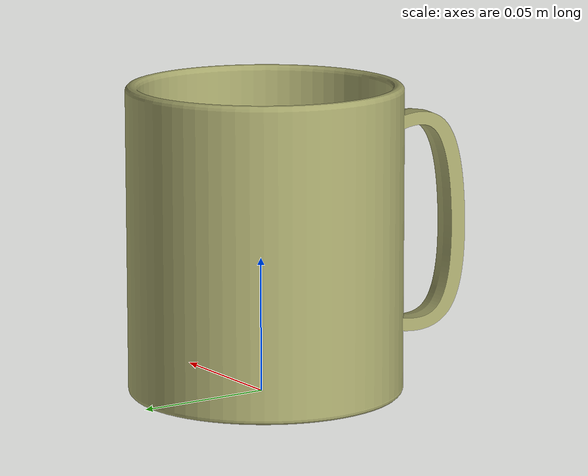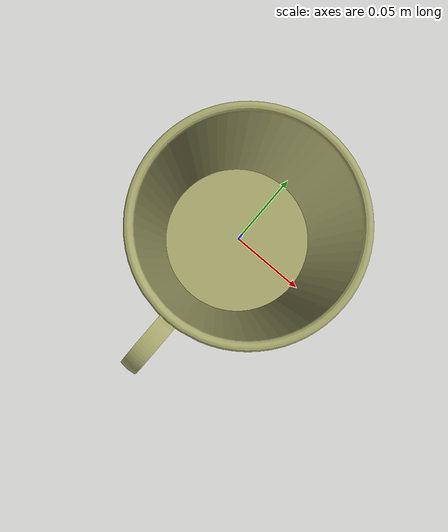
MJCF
<mujoco>
  <asset>
    <mesh name="cup_visual"           file="cup_visual.stl" scale="0.001 0.001 0.001"/>
    <mesh name="cup_handle_collision" file="cup_handle_collision.stl" scale="0.001 0.001 0.001"/>
    <mesh name="cup_bottom_collision" file="cup_bottom_collision.stl" scale="0.001 0.001 0.001"/>
    <mesh name="cup_body_0_collision" file="cup_body_0.stl" scale="0.001 0.001 0.001"/>
    <mesh name="cup_body_1_collision" file="cup_body_1.stl" scale="0.001 0.001 0.001"/>
    <mesh name="cup_body_2_collision" file="cup_body_2.stl" scale="0.001 0.001 0.001"/>
    <mesh name="cup_body_3_collision" file="cup_body_3.stl" scale="0.001 0.001 0.001"/>
    <mesh name="cup_body_4_collision" file="cup_body_4.stl" scale="0.001 0.001 0.001"/>
    <mesh name="cup_body_5_collision" file="cup_body_5.stl" scale="0.001 0.001 0.001"/>
    <mesh name="cup_body_6_collision" file="cup_body_6.stl" scale="0.001 0.001 0.001"/>
    <mesh name="cup_body_7_collision" file="cup_body_7.stl" scale="0.001 0.001 0.001"/>
  </asset>
  <worldbody>
    <body name="cup" pos="0.0 0.0 0.0" quat="1.0 0.0 0.0 0">
      <geom type="mesh" mesh="cup_visual" pos="0.0 0.0 0.0"  rgba="0.647 0.649 0.418 1" contype="0" conaffinity="0"/>
      <geom type="mesh" mesh="cup_body_0_collision" pos="0.0 0.0 0.0"   rgba="0.95 0.65 0.15 0"/>
      <geom type="mesh" mesh="cup_body_1_collision" pos="0.0 0.0 0.0"   rgba="0.95 0.65 0.15 0"/>
      <geom type="mesh" mesh="cup_body_2_collision" pos="0.0 0.0 0.0"   rgba="0.95 0.65 0.15 0"/>
      <geom type="mesh" mesh="cup_body_3_collision" pos="0.0 0.0 0.0"   rgba="0.95 0.65 0.15 0"/>
      <geom type="mesh" mesh="cup_body_4_collision" pos="0.0 0.0 0.0"   rgba="0.95 0.65 0.15 0"/>
      <geom type="mesh" mesh="cup_body_5_collision" pos="0.0 0.0 0.0"   rgba="0.95 0.65 0.15 0"/>
      <geom type="mesh" mesh="cup_body_6_collision" pos="0.0 0.0 0.0"   rgba="0.95 0.65 0.15 0"/>
      <geom type="mesh" mesh="cup_body_7_collision" pos="0.0 0.0 0.0"   rgba="0.95 0.65 0.15 0"/>
      <geom name="cup_handle_collision" type="mesh" mesh="cup_handle_collision" pos="0.0 0.0 0.0"   rgba="0.95 0.65 0.15 0" friction="3 0.005 0.0001"/>
      <geom type="mesh" mesh="cup_bottom_collision" pos="0.0 0.0 0.0"   rgba="0.95 0.65 0.15 0"/>
      <joint name="cup_joint" type="free"/>
      <inertial pos="0.0 0.0 0.0" mass="0.005" diaginertia="0.001 0.001 0.001"/>
    </body>
  </worldbody>
</mujoco>
